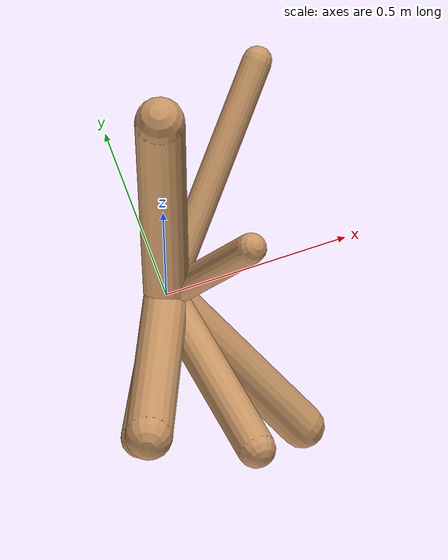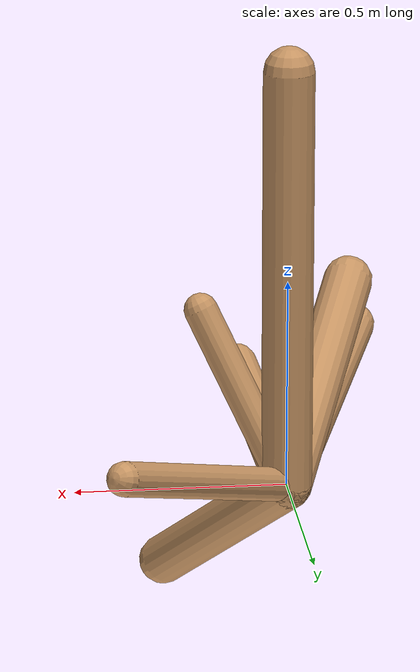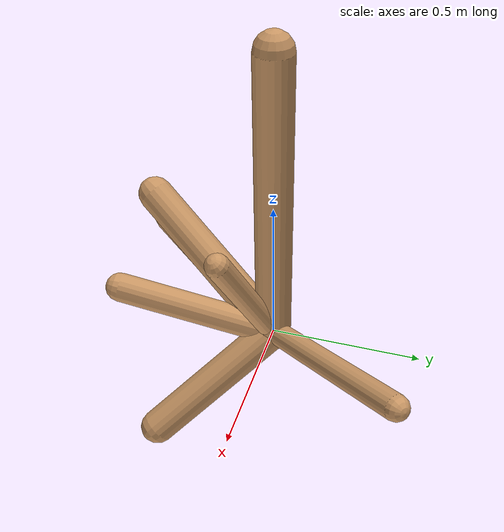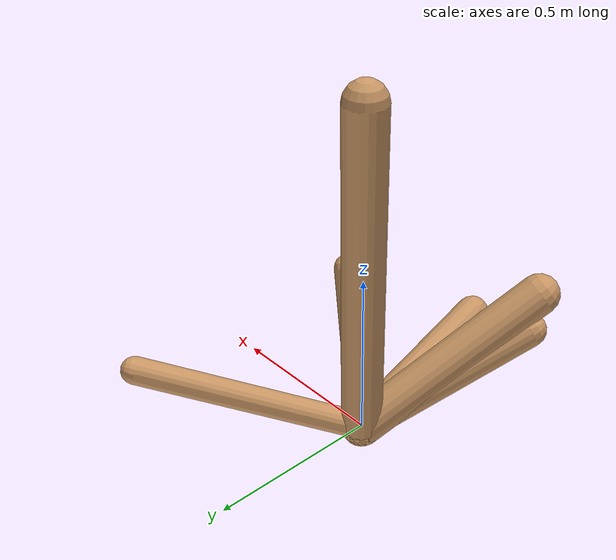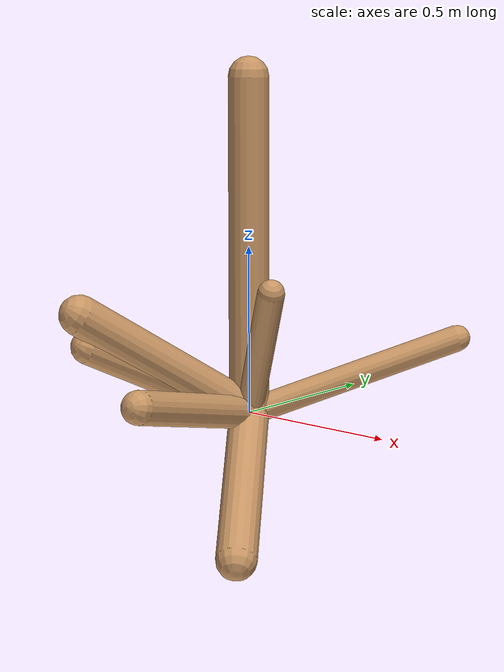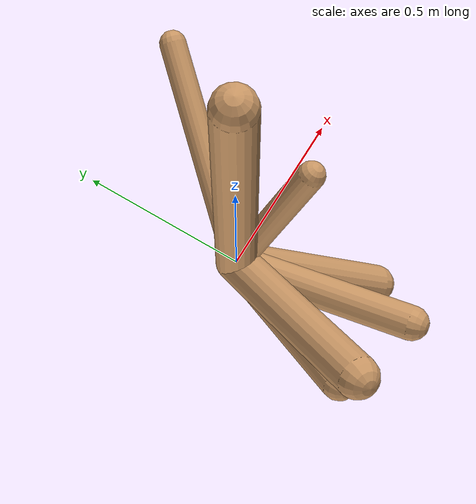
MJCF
<!--
                    joint_number: 6
                    -->
                    <mujoco model="randomrobot">
                        <compiler angle="degree" coordinate="global" inertiafromgeom="true"/>
                        <default>
                        <joint armature="0.01" damping=".1" limited="true"/>
                        <geom conaffinity="0" condim="3" contype="1" density="1000" friction="0.8 .1 .1" rgba="0.8 0.6 .4 1"/>
                        </default>
                        <option integrator="RK4" timestep="0.002"/>
                        <worldbody>
                    <body name='torso' pos='0.00 0.00 0.63'><geom fromto='0 0 0 0.00 0.00 1.00' name='torso_geom' size='0.06' type='capsule'/><inertial mass='0.3'/><body name='L0_D1' pos='0.00 0.00 0.22'><joint axis='0 1 0' name='L0_D1_joint' pos='0 0 0' range='41.41 42.45' type='hinge'/><geom fromto='0 0 0 0.19 -0.12 0.40' name='L0_D1_geom' size='0.04' type='capsule'/><inertial mass='0.3'/><body name='L1_D0' pos='0.12 -0.08 0.26'><joint axis='0 0 1' name='L1_D0_joint' pos='0 0 0' range='39.65 166.97' type='hinge'/><geom fromto='0 0 0 -0.22 -0.45 0.24' name='L1_D0_geom' size='0.05' type='capsule'/><inertial mass='0.3'/></body><body name='L2_D0' pos='0.03 -0.02 0.07'><joint axis='1 0 0' name='L2_D0_joint' pos='0 0 0' range='13.37 167.56' type='hinge'/><geom fromto='0 0 0 0.26 -0.35 -0.32' name='L2_D0_geom' size='0.06' type='capsule'/><inertial mass='0.3'/></body></body><body name='L3_D1' pos='0.00 0.00 0.89'><joint axis='0 0 1' name='L3_D1_joint' pos='0 0 0' range='84.06 169.21' type='hinge'/><geom fromto='0 0 0 0.06 -0.53 0.12' name='L3_D1_geom' size='0.05' type='capsule'/><inertial mass='0.3'/><body name='L4_D0' pos='0.05 -0.42 0.09'><joint axis='1 0 0' name='L4_D0_joint' pos='0 0 0' range='44.98 63.83' type='hinge'/><geom fromto='0 0 0 0.42 0.47 0.21' name='L4_D0_geom' size='0.04' type='capsule'/><inertial mass='0.3'/></body><body name='L5_D0' pos='0.02 -0.21 0.05'><joint axis='0 1 0' name='L5_D0_joint' pos='0 0 0' range='66.67 109.31' type='hinge'/><geom fromto='0 0 0 -0.21 -0.49 0.34' name='L5_D0_geom' size='0.06' type='capsule'/><inertial mass='0.3'/></body></body></body>
                        </worldbody>
                    </mujoco>
